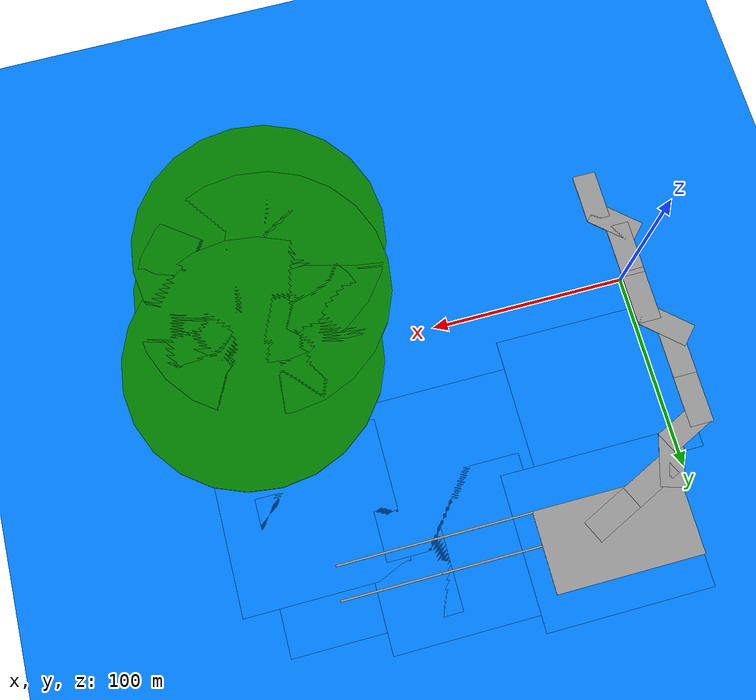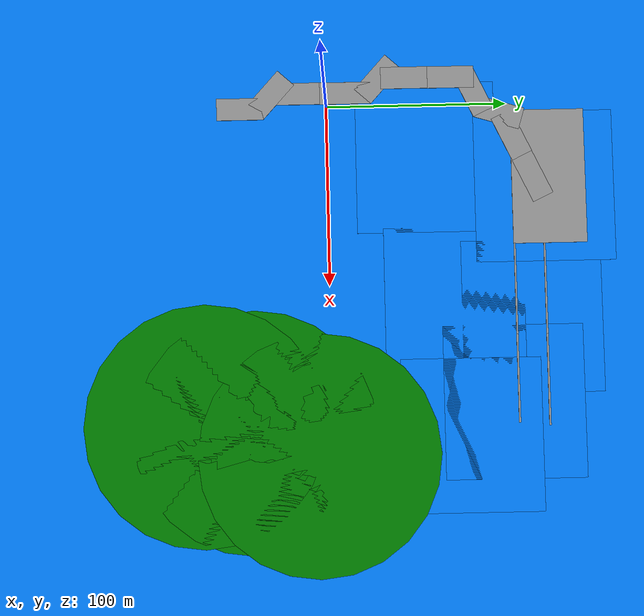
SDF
<sdf version="1.7">
 <world name="default">
  <model name="ground_plane">
   <static>1</static>
   <link name="link">
    <collision name="collision">
     <geometry><plane><normal>0 0 1</normal><size>100 100</size></plane></geometry>
     <surface><friction><ode><mu>100</mu><mu2>50</mu2></ode></friction></surface>
    </collision>
    <visual name="visual">
     <cast_shadows>0</cast_shadows>
     <geometry><plane><normal>0 0 1</normal><size>100 100</size></plane></geometry>
     <material>
      <ambient>0 0.5 1 1</ambient>
      <diffuse>0 0.5 1 1</diffuse>
      <specular>0.1 0.1 0.1 1</specular>
      <emissive>0 0 0 0</emissive>
     </material>
    </visual>
   </link>
  </model>
  <model name="ground">
   <link name="link">
    <inertial>
     <mass>1</mass>
     <inertia>
      <ixx>0.166667</ixx>
      <ixy>0</ixy>
      <ixz>0</ixz>
      <iyy>0.166667</iyy>
      <iyz>0</iyz>
      <izz>0.166667</izz>
     </inertia>
    </inertial>
    <pose>0 2.71082 0 0 -0 0</pose>
    <visual name="visual">
     <geometry><box><size>12.2775 26.0732 0.428308</size></box></geometry>
     <material>
      <lighting>1</lighting>
      <script><uri>file://media/materials/scripts/gazebo.material</uri><name>Gazebo/Grey</name></script>
      <shader type="pixel"/>
     </material>
    </visual>
    <collision name="collision">
     <geometry><box><size>12.2775 26.0732 0.428308</size></box></geometry>
     <surface>
      <friction>
       <ode><mu>1</mu><mu2>1</mu2><fdir1>0 0 0</fdir1><slip1>0</slip1><slip2>0</slip2></ode>
       <torsional>
        <coefficient>1</coefficient>
        <patch_radius>0</patch_radius>
        <surface_radius>0</surface_radius>
        <use_patch_radius>1</use_patch_radius>
        <ode><slip>0</slip></ode>
       </torsional>
      </friction>
      <bounce><restitution_coefficient>0</restitution_coefficient><threshold>1e+06</threshold></bounce>
      <contact>
       <collide_without_contact>0</collide_without_contact>
       <collide_without_contact_bitmask>1</collide_without_contact_bitmask>
       <collide_bitmask>1</collide_bitmask>
       <ode>
        <soft_cfm>0</soft_cfm>
        <soft_erp>0.2</soft_erp>
        <kp>1e+13</kp>
        <kd>1</kd>
        <max_vel>0.01</max_vel>
        <min_depth>0</min_depth>
       </ode>
       <bullet>
        <split_impulse>1</split_impulse>
        <split_impulse_penetration_threshold>-0.01</split_impulse_penetration_threshold>
        <soft_cfm>0</soft_cfm>
        <soft_erp>0.2</soft_erp>
        <kp>1e+13</kp>
        <kd>1</kd>
       </bullet>
      </contact>
     </surface>
    </collision>
   </link>
   <link name="link_clone">
    <inertial>
     <mass>1</mass>
     <inertia>
      <ixx>0.166667</ixx>
      <ixy>0</ixy>
      <ixz>0</ixz>
      <iyy>0.166667</iyy>
      <iyz>0</iyz>
      <izz>0.166667</izz>
     </inertia>
    </inertial>
    <pose>-7.60672 19.8582 0 0 -0 0.838579</pose>
    <visual name="visual">
     <geometry><box><size>12.2775 26.0732 0.428308</size></box></geometry>
     <material>
      <lighting>1</lighting>
      <script><uri>file://media/materials/scripts/gazebo.material</uri><name>Gazebo/Grey</name></script>
      <shader type="pixel"/>
     </material>
    </visual>
    <collision name="collision">
     <geometry><box><size>12.2775 26.0732 0.428308</size></box></geometry>
     <surface>
      <friction>
       <ode><mu>1</mu><mu2>1</mu2><fdir1>0 0 0</fdir1><slip1>0</slip1><slip2>0</slip2></ode>
       <torsional>
        <coefficient>1</coefficient>
        <patch_radius>0</patch_radius>
        <surface_radius>0</surface_radius>
        <use_patch_radius>1</use_patch_radius>
        <ode><slip>0</slip></ode>
       </torsional>
      </friction>
      <bounce><restitution_coefficient>0</restitution_coefficient><threshold>1e+06</threshold></bounce>
      <contact>
       <collide_without_contact>0</collide_without_contact>
       <collide_without_contact_bitmask>1</collide_without_contact_bitmask>
       <collide_bitmask>1</collide_bitmask>
       <ode>
        <soft_cfm>0</soft_cfm>
        <soft_erp>0.2</soft_erp>
        <kp>1e+13</kp>
        <kd>1</kd>
        <max_vel>0.01</max_vel>
        <min_depth>0</min_depth>
       </ode>
       <bullet>
        <split_impulse>1</split_impulse>
        <split_impulse_penetration_threshold>-0.01</split_impulse_penetration_threshold>
        <soft_cfm>0</soft_cfm>
        <soft_erp>0.2</soft_erp>
        <kp>1e+13</kp>
        <kd>1</kd>
       </bullet>
      </contact>
     </surface>
    </collision>
   </link>
   <link name="link_clone_0">
    <inertial>
     <mass>1</mass>
     <inertia>
      <ixx>0.166667</ixx>
      <ixy>0</ixy>
      <ixz>0</ixz>
      <iyy>0.166667</iyy>
      <iyz>0</iyz>
      <izz>0.166667</izz>
     </inertia>
    </inertial>
    <pose>-8.13936 34.3499 0 0 -0 0</pose>
    <visual name="visual">
     <geometry><box><size>12.2775 26.0732 0.428308</size></box></geometry>
     <material>
      <lighting>1</lighting>
      <script><uri>file://media/materials/scripts/gazebo.material</uri><name>Gazebo/Grey</name></script>
      <shader type="pixel"/>
     </material>
    </visual>
    <collision name="collision">
     <geometry><box><size>12.2775 26.0732 0.428308</size></box></geometry>
     <surface>
      <friction>
       <ode><mu>1</mu><mu2>1</mu2><fdir1>0 0 0</fdir1><slip1>0</slip1><slip2>0</slip2></ode>
       <torsional>
        <coefficient>1</coefficient>
        <patch_radius>0</patch_radius>
        <surface_radius>0</surface_radius>
        <use_patch_radius>1</use_patch_radius>
        <ode><slip>0</slip></ode>
       </torsional>
      </friction>
      <bounce><restitution_coefficient>0</restitution_coefficient><threshold>1e+06</threshold></bounce>
      <contact>
       <collide_without_contact>0</collide_without_contact>
       <collide_without_contact_bitmask>1</collide_without_contact_bitmask>
       <collide_bitmask>1</collide_bitmask>
       <ode>
        <soft_cfm>0</soft_cfm>
        <soft_erp>0.2</soft_erp>
        <kp>1e+13</kp>
        <kd>1</kd>
        <max_vel>0.01</max_vel>
        <min_depth>0</min_depth>
       </ode>
       <bullet>
        <split_impulse>1</split_impulse>
        <split_impulse_penetration_threshold>-0.01</split_impulse_penetration_threshold>
        <soft_cfm>0</soft_cfm>
        <soft_erp>0.2</soft_erp>
        <kp>1e+13</kp>
        <kd>1</kd>
       </bullet>
      </contact>
     </surface>
    </collision>
   </link>
   <link name="link_clone_0_clone">
    <inertial>
     <mass>1</mass>
     <inertia>
      <ixx>0.166667</ixx>
      <ixy>0</ixy>
      <ixz>0</ixz>
      <iyy>0.166667</iyy>
      <iyz>0</iyz>
      <izz>0.166667</izz>
     </inertia>
    </inertial>
    <pose>-8.03787 60.3254 0 0 -0 0</pose>
    <visual name="visual">
     <geometry><box><size>12.2775 26.0732 0.428308</size></box></geometry>
     <material>
      <lighting>1</lighting>
      <script><uri>file://media/materials/scripts/gazebo.material</uri><name>Gazebo/Grey</name></script>
      <shader type="pixel"/>
     </material>
    </visual>
    <collision name="collision">
     <geometry><box><size>12.2775 26.0732 0.428308</size></box></geometry>
     <surface>
      <friction>
       <ode><mu>1</mu><mu2>1</mu2><fdir1>0 0 0</fdir1><slip1>0</slip1><slip2>0</slip2></ode>
       <torsional>
        <coefficient>1</coefficient>
        <patch_radius>0</patch_radius>
        <surface_radius>0</surface_radius>
        <use_patch_radius>1</use_patch_radius>
        <ode><slip>0</slip></ode>
       </torsional>
      </friction>
      <bounce><restitution_coefficient>0</restitution_coefficient><threshold>1e+06</threshold></bounce>
      <contact>
       <collide_without_contact>0</collide_without_contact>
       <collide_without_contact_bitmask>1</collide_without_contact_bitmask>
       <collide_bitmask>1</collide_bitmask>
       <ode>
        <soft_cfm>0</soft_cfm>
        <soft_erp>0.2</soft_erp>
        <kp>1e+13</kp>
        <kd>1</kd>
        <max_vel>0.01</max_vel>
        <min_depth>0</min_depth>
       </ode>
       <bullet>
        <split_impulse>1</split_impulse>
        <split_impulse_penetration_threshold>-0.01</split_impulse_penetration_threshold>
        <soft_cfm>0</soft_cfm>
        <soft_erp>0.2</soft_erp>
        <kp>1e+13</kp>
        <kd>1</kd>
       </bullet>
      </contact>
     </surface>
    </collision>
   </link>
   <static>1</static>
   <pose>0.250638 -51.022 0.106728 0 -0 0</pose>
  </model>
  <model name="ground_clone">
   <link name="link">
    <inertial>
     <mass>1</mass>
     <inertia>
      <ixx>0.166667</ixx>
      <ixy>0</ixy>
      <ixz>0</ixz>
      <iyy>0.166667</iyy>
      <iyz>0</iyz>
      <izz>0.166667</izz>
     </inertia>
    </inertial>
    <pose>0 2.71082 0 0 -0 0</pose>
    <visual name="visual">
     <geometry><box><size>12.2775 26.0732 0.428308</size></box></geometry>
     <material>
      <lighting>1</lighting>
      <script><uri>file://media/materials/scripts/gazebo.material</uri><name>Gazebo/Grey</name></script>
      <shader type="pixel"/>
     </material>
    </visual>
    <collision name="collision">
     <geometry><box><size>12.2775 26.0732 0.428308</size></box></geometry>
     <surface>
      <friction>
       <ode><mu>1</mu><mu2>1</mu2><fdir1>0 0 0</fdir1><slip1>0</slip1><slip2>0</slip2></ode>
       <torsional>
        <coefficient>1</coefficient>
        <patch_radius>0</patch_radius>
        <surface_radius>0</surface_radius>
        <use_patch_radius>1</use_patch_radius>
        <ode><slip>0</slip></ode>
       </torsional>
      </friction>
      <bounce><restitution_coefficient>0</restitution_coefficient><threshold>1e+06</threshold></bounce>
      <contact>
       <collide_without_contact>0</collide_without_contact>
       <collide_without_contact_bitmask>1</collide_without_contact_bitmask>
       <collide_bitmask>1</collide_bitmask>
       <ode>
        <soft_cfm>0</soft_cfm>
        <soft_erp>0.2</soft_erp>
        <kp>1e+13</kp>
        <kd>1</kd>
        <max_vel>0.01</max_vel>
        <min_depth>0</min_depth>
       </ode>
       <bullet>
        <split_impulse>1</split_impulse>
        <split_impulse_penetration_threshold>-0.01</split_impulse_penetration_threshold>
        <soft_cfm>0</soft_cfm>
        <soft_erp>0.2</soft_erp>
        <kp>1e+13</kp>
        <kd>1</kd>
       </bullet>
      </contact>
     </surface>
    </collision>
   </link>
   <link name="link_clone">
    <inertial>
     <mass>1</mass>
     <inertia>
      <ixx>0.166667</ixx>
      <ixy>0</ixy>
      <ixz>0</ixz>
      <iyy>0.166667</iyy>
      <iyz>0</iyz>
      <izz>0.166667</izz>
     </inertia>
    </inertial>
    <pose>-7.60672 19.8582 0 0 -0 0.838579</pose>
    <visual name="visual">
     <geometry><box><size>12.2775 26.0732 0.428308</size></box></geometry>
     <material>
      <lighting>1</lighting>
      <script><uri>file://media/materials/scripts/gazebo.material</uri><name>Gazebo/Grey</name></script>
      <shader type="pixel"/>
     </material>
    </visual>
    <collision name="collision">
     <geometry><box><size>12.2775 26.0732 0.428308</size></box></geometry>
     <surface>
      <friction>
       <ode><mu>1</mu><mu2>1</mu2><fdir1>0 0 0</fdir1><slip1>0</slip1><slip2>0</slip2></ode>
       <torsional>
        <coefficient>1</coefficient>
        <patch_radius>0</patch_radius>
        <surface_radius>0</surface_radius>
        <use_patch_radius>1</use_patch_radius>
        <ode><slip>0</slip></ode>
       </torsional>
      </friction>
      <bounce><restitution_coefficient>0</restitution_coefficient><threshold>1e+06</threshold></bounce>
      <contact>
       <collide_without_contact>0</collide_without_contact>
       <collide_without_contact_bitmask>1</collide_without_contact_bitmask>
       <collide_bitmask>1</collide_bitmask>
       <ode>
        <soft_cfm>0</soft_cfm>
        <soft_erp>0.2</soft_erp>
        <kp>1e+13</kp>
        <kd>1</kd>
        <max_vel>0.01</max_vel>
        <min_depth>0</min_depth>
       </ode>
       <bullet>
        <split_impulse>1</split_impulse>
        <split_impulse_penetration_threshold>-0.01</split_impulse_penetration_threshold>
        <soft_cfm>0</soft_cfm>
        <soft_erp>0.2</soft_erp>
        <kp>1e+13</kp>
        <kd>1</kd>
       </bullet>
      </contact>
     </surface>
    </collision>
   </link>
   <link name="link_clone_0">
    <inertial>
     <mass>1</mass>
     <inertia>
      <ixx>0.166667</ixx>
      <ixy>0</ixy>
      <ixz>0</ixz>
      <iyy>0.166667</iyy>
      <iyz>0</iyz>
      <izz>0.166667</izz>
     </inertia>
    </inertial>
    <pose>-8.13936 34.3499 0 0 -0 0</pose>
    <visual name="visual">
     <geometry><box><size>12.2775 26.0732 0.428308</size></box></geometry>
     <material>
      <lighting>1</lighting>
      <script><uri>file://media/materials/scripts/gazebo.material</uri><name>Gazebo/Grey</name></script>
      <shader type="pixel"/>
     </material>
    </visual>
    <collision name="collision">
     <geometry><box><size>12.2775 26.0732 0.428308</size></box></geometry>
     <surface>
      <friction>
       <ode><mu>1</mu><mu2>1</mu2><fdir1>0 0 0</fdir1><slip1>0</slip1><slip2>0</slip2></ode>
       <torsional>
        <coefficient>1</coefficient>
        <patch_radius>0</patch_radius>
        <surface_radius>0</surface_radius>
        <use_patch_radius>1</use_patch_radius>
        <ode><slip>0</slip></ode>
       </torsional>
      </friction>
      <bounce><restitution_coefficient>0</restitution_coefficient><threshold>1e+06</threshold></bounce>
      <contact>
       <collide_without_contact>0</collide_without_contact>
       <collide_without_contact_bitmask>1</collide_without_contact_bitmask>
       <collide_bitmask>1</collide_bitmask>
       <ode>
        <soft_cfm>0</soft_cfm>
        <soft_erp>0.2</soft_erp>
        <kp>1e+13</kp>
        <kd>1</kd>
        <max_vel>0.01</max_vel>
        <min_depth>0</min_depth>
       </ode>
       <bullet>
        <split_impulse>1</split_impulse>
        <split_impulse_penetration_threshold>-0.01</split_impulse_penetration_threshold>
        <soft_cfm>0</soft_cfm>
        <soft_erp>0.2</soft_erp>
        <kp>1e+13</kp>
        <kd>1</kd>
       </bullet>
      </contact>
     </surface>
    </collision>
   </link>
   <link name="link_clone_0_clone">
    <inertial>
     <mass>1</mass>
     <inertia>
      <ixx>0.166667</ixx>
      <ixy>0</ixy>
      <ixz>0</ixz>
      <iyy>0.166667</iyy>
      <iyz>0</iyz>
      <izz>0.166667</izz>
     </inertia>
    </inertial>
    <pose>-8.03787 60.3254 0 0 -0 0</pose>
    <visual name="visual">
     <geometry><box><size>12.2775 26.0732 0.428308</size></box></geometry>
     <material>
      <lighting>1</lighting>
      <script><uri>file://media/materials/scripts/gazebo.material</uri><name>Gazebo/Grey</name></script>
      <shader type="pixel"/>
     </material>
    </visual>
    <collision name="collision">
     <geometry><box><size>12.2775 26.0732 0.428308</size></box></geometry>
     <surface>
      <friction>
       <ode><mu>1</mu><mu2>1</mu2><fdir1>0 0 0</fdir1><slip1>0</slip1><slip2>0</slip2></ode>
       <torsional>
        <coefficient>1</coefficient>
        <patch_radius>0</patch_radius>
        <surface_radius>0</surface_radius>
        <use_patch_radius>1</use_patch_radius>
        <ode><slip>0</slip></ode>
       </torsional>
      </friction>
      <bounce><restitution_coefficient>0</restitution_coefficient><threshold>1e+06</threshold></bounce>
      <contact>
       <collide_without_contact>0</collide_without_contact>
       <collide_without_contact_bitmask>1</collide_without_contact_bitmask>
       <collide_bitmask>1</collide_bitmask>
       <ode>
        <soft_cfm>0</soft_cfm>
        <soft_erp>0.2</soft_erp>
        <kp>1e+13</kp>
        <kd>1</kd>
        <max_vel>0.01</max_vel>
        <min_depth>0</min_depth>
       </ode>
       <bullet>
        <split_impulse>1</split_impulse>
        <split_impulse_penetration_threshold>-0.01</split_impulse_penetration_threshold>
        <soft_cfm>0</soft_cfm>
        <soft_erp>0.2</soft_erp>
        <kp>1e+13</kp>
        <kd>1</kd>
       </bullet>
      </contact>
     </surface>
    </collision>
   </link>
   <static>1</static>
   <pose>-7.76388 9.13868 0.121126 0 -0 0</pose>
  </model>
  <model name="ground_clone_0">
   <link name="link">
    <inertial>
     <mass>1</mass>
     <inertia>
      <ixx>0.166667</ixx>
      <ixy>0</ixy>
      <ixz>0</ixz>
      <iyy>0.166667</iyy>
      <iyz>0</iyz>
      <izz>0.166667</izz>
     </inertia>
    </inertial>
    <pose>0 2.71082 0 0 -0 0</pose>
    <visual name="visual">
     <geometry><box><size>12.2775 26.0732 0.428308</size></box></geometry>
     <material>
      <lighting>1</lighting>
      <script><uri>file://media/materials/scripts/gazebo.material</uri><name>Gazebo/Grey</name></script>
      <shader type="pixel"/>
     </material>
    </visual>
    <collision name="collision">
     <geometry><box><size>12.2775 26.0732 0.428308</size></box></geometry>
     <surface>
      <friction>
       <ode><mu>1</mu><mu2>1</mu2><fdir1>0 0 0</fdir1><slip1>0</slip1><slip2>0</slip2></ode>
       <torsional>
        <coefficient>1</coefficient>
        <patch_radius>0</patch_radius>
        <surface_radius>0</surface_radius>
        <use_patch_radius>1</use_patch_radius>
        <ode><slip>0</slip></ode>
       </torsional>
      </friction>
      <bounce><restitution_coefficient>0</restitution_coefficient><threshold>1e+06</threshold></bounce>
      <contact>
       <collide_without_contact>0</collide_without_contact>
       <collide_without_contact_bitmask>1</collide_without_contact_bitmask>
       <collide_bitmask>1</collide_bitmask>
       <ode>
        <soft_cfm>0</soft_cfm>
        <soft_erp>0.2</soft_erp>
        <kp>1e+13</kp>
        <kd>1</kd>
        <max_vel>0.01</max_vel>
        <min_depth>0</min_depth>
       </ode>
       <bullet>
        <split_impulse>1</split_impulse>
        <split_impulse_penetration_threshold>-0.01</split_impulse_penetration_threshold>
        <soft_cfm>0</soft_cfm>
        <soft_erp>0.2</soft_erp>
        <kp>1e+13</kp>
        <kd>1</kd>
       </bullet>
      </contact>
     </surface>
    </collision>
   </link>
   <link name="link_clone">
    <inertial>
     <mass>1</mass>
     <inertia>
      <ixx>0.166667</ixx>
      <ixy>0</ixy>
      <ixz>0</ixz>
      <iyy>0.166667</iyy>
      <iyz>0</iyz>
      <izz>0.166667</izz>
     </inertia>
    </inertial>
    <pose>-7.60672 19.8582 0 0 -0 0.838579</pose>
    <visual name="visual">
     <geometry><box><size>12.2775 26.0732 0.428308</size></box></geometry>
     <material>
      <lighting>1</lighting>
      <script><uri>file://media/materials/scripts/gazebo.material</uri><name>Gazebo/Grey</name></script>
      <shader type="pixel"/>
     </material>
    </visual>
    <collision name="collision">
     <geometry><box><size>12.2775 26.0732 0.428308</size></box></geometry>
     <surface>
      <friction>
       <ode><mu>1</mu><mu2>1</mu2><fdir1>0 0 0</fdir1><slip1>0</slip1><slip2>0</slip2></ode>
       <torsional>
        <coefficient>1</coefficient>
        <patch_radius>0</patch_radius>
        <surface_radius>0</surface_radius>
        <use_patch_radius>1</use_patch_radius>
        <ode><slip>0</slip></ode>
       </torsional>
      </friction>
      <bounce><restitution_coefficient>0</restitution_coefficient><threshold>1e+06</threshold></bounce>
      <contact>
       <collide_without_contact>0</collide_without_contact>
       <collide_without_contact_bitmask>1</collide_without_contact_bitmask>
       <collide_bitmask>1</collide_bitmask>
       <ode>
        <soft_cfm>0</soft_cfm>
        <soft_erp>0.2</soft_erp>
        <kp>1e+13</kp>
        <kd>1</kd>
        <max_vel>0.01</max_vel>
        <min_depth>0</min_depth>
       </ode>
       <bullet>
        <split_impulse>1</split_impulse>
        <split_impulse_penetration_threshold>-0.01</split_impulse_penetration_threshold>
        <soft_cfm>0</soft_cfm>
        <soft_erp>0.2</soft_erp>
        <kp>1e+13</kp>
        <kd>1</kd>
       </bullet>
      </contact>
     </surface>
    </collision>
   </link>
   <link name="link_clone_0">
    <inertial>
     <mass>1</mass>
     <inertia>
      <ixx>0.166667</ixx>
      <ixy>0</ixy>
      <ixz>0</ixz>
      <iyy>0.166667</iyy>
      <iyz>0</iyz>
      <izz>0.166667</izz>
     </inertia>
    </inertial>
    <pose>-8.13936 34.3499 0 0 -0 0</pose>
    <visual name="visual">
     <geometry><box><size>12.2775 26.0732 0.428308</size></box></geometry>
     <material>
      <lighting>1</lighting>
      <script><uri>file://media/materials/scripts/gazebo.material</uri><name>Gazebo/Grey</name></script>
      <shader type="pixel"/>
     </material>
    </visual>
    <collision name="collision">
     <geometry><box><size>12.2775 26.0732 0.428308</size></box></geometry>
     <surface>
      <friction>
       <ode><mu>1</mu><mu2>1</mu2><fdir1>0 0 0</fdir1><slip1>0</slip1><slip2>0</slip2></ode>
       <torsional>
        <coefficient>1</coefficient>
        <patch_radius>0</patch_radius>
        <surface_radius>0</surface_radius>
        <use_patch_radius>1</use_patch_radius>
        <ode><slip>0</slip></ode>
       </torsional>
      </friction>
      <bounce><restitution_coefficient>0</restitution_coefficient><threshold>1e+06</threshold></bounce>
      <contact>
       <collide_without_contact>0</collide_without_contact>
       <collide_without_contact_bitmask>1</collide_without_contact_bitmask>
       <collide_bitmask>1</collide_bitmask>
       <ode>
        <soft_cfm>0</soft_cfm>
        <soft_erp>0.2</soft_erp>
        <kp>1e+13</kp>
        <kd>1</kd>
        <max_vel>0.01</max_vel>
        <min_depth>0</min_depth>
       </ode>
       <bullet>
        <split_impulse>1</split_impulse>
        <split_impulse_penetration_threshold>-0.01</split_impulse_penetration_threshold>
        <soft_cfm>0</soft_cfm>
        <soft_erp>0.2</soft_erp>
        <kp>1e+13</kp>
        <kd>1</kd>
       </bullet>
      </contact>
     </surface>
    </collision>
   </link>
   <link name="link_clone_0_clone">
    <inertial>
     <mass>1</mass>
     <inertia>
      <ixx>0.166667</ixx>
      <ixy>0</ixy>
      <ixz>0</ixz>
      <iyy>0.166667</iyy>
      <iyz>0</iyz>
      <izz>0.166667</izz>
     </inertia>
    </inertial>
    <pose>-8.03787 60.3254 0 0 -0 0</pose>
    <visual name="visual">
     <geometry><box><size>12.2775 26.0732 0.428308</size></box></geometry>
     <material>
      <lighting>1</lighting>
      <script><uri>file://media/materials/scripts/gazebo.material</uri><name>Gazebo/Grey</name></script>
      <shader type="pixel"/>
     </material>
    </visual>
    <collision name="collision">
     <geometry><box><size>12.2775 26.0732 0.428308</size></box></geometry>
     <surface>
      <friction>
       <ode><mu>1</mu><mu2>1</mu2><fdir1>0 0 0</fdir1><slip1>0</slip1><slip2>0</slip2></ode>
       <torsional>
        <coefficient>1</coefficient>
        <patch_radius>0</patch_radius>
        <surface_radius>0</surface_radius>
        <use_patch_radius>1</use_patch_radius>
        <ode><slip>0</slip></ode>
       </torsional>
      </friction>
      <bounce><restitution_coefficient>0</restitution_coefficient><threshold>1e+06</threshold></bounce>
      <contact>
       <collide_without_contact>0</collide_without_contact>
       <collide_without_contact_bitmask>1</collide_without_contact_bitmask>
       <collide_bitmask>1</collide_bitmask>
       <ode>
        <soft_cfm>0</soft_cfm>
        <soft_erp>0.2</soft_erp>
        <kp>1e+13</kp>
        <kd>1</kd>
        <max_vel>0.01</max_vel>
        <min_depth>0</min_depth>
       </ode>
       <bullet>
        <split_impulse>1</split_impulse>
        <split_impulse_penetration_threshold>-0.01</split_impulse_penetration_threshold>
        <soft_cfm>0</soft_cfm>
        <soft_erp>0.2</soft_erp>
        <kp>1e+13</kp>
        <kd>1</kd>
       </bullet>
      </contact>
     </surface>
    </collision>
   </link>
   <static>1</static>
   <pose>-9.88185 80.6091 0.120152 0 0 -1.12831</pose>
  </model>
  <model name="water_clone_2">
   <link name="link">
    <inertial>
     <mass>1.0585</mass>
     <inertia><ixx>525.225</ixx><ixy>0</ixy><ixz>0</ixz><iyy>622.97</iyy><iyz>0</iyz><izz>1148.19</izz></inertia>
    </inertial>
    <pose>37.5335 0 0 0 -0 0</pose>
    <visual name="visual">
     <geometry><box><size>84.0384 77.1644 0.109494</size></box></geometry>
     <material>
      <ambient>0 0.5 1 1</ambient>
      <diffuse>0 0.5 1 1</diffuse>
      <specular>0.1 0.1 0.1 1</specular>
      <emissive>0 0 0 0</emissive>
     </material>
    </visual>
    <collision name="collision">
     <geometry><box><size>84.0384 77.1644 0.109494</size></box></geometry>
     <surface>
      <friction>
       <ode><mu>1</mu><mu2>1</mu2><fdir1>0 0 0</fdir1><slip1>0</slip1><slip2>0</slip2></ode>
       <torsional>
        <coefficient>1</coefficient>
        <patch_radius>0</patch_radius>
        <surface_radius>0</surface_radius>
        <use_patch_radius>1</use_patch_radius>
        <ode><slip>0</slip></ode>
       </torsional>
      </friction>
      <bounce><restitution_coefficient>0</restitution_coefficient><threshold>1e+06</threshold></bounce>
      <contact>
       <collide_without_contact>0</collide_without_contact>
       <collide_without_contact_bitmask>1</collide_without_contact_bitmask>
       <collide_bitmask>1</collide_bitmask>
       <ode>
        <soft_cfm>0</soft_cfm>
        <soft_erp>0.2</soft_erp>
        <kp>1e+13</kp>
        <kd>1</kd>
        <max_vel>0.01</max_vel>
        <min_depth>0</min_depth>
       </ode>
       <bullet>
        <split_impulse>1</split_impulse>
        <split_impulse_penetration_threshold>-0.01</split_impulse_penetration_threshold>
        <soft_cfm>0</soft_cfm>
        <soft_erp>0.2</soft_erp>
        <kp>1e+13</kp>
        <kd>1</kd>
       </bullet>
      </contact>
     </surface>
    </collision>
   </link>
   <static>1</static>
   <pose>-8.2865 54.4211 0 0 -0 0</pose>
  </model>
  <model name="water_clone_3">
   <link name="link">
    <inertial>
     <mass>1.0585</mass>
     <inertia><ixx>525.225</ixx><ixy>0</ixy><ixz>0</ixz><iyy>622.97</iyy><iyz>0</iyz><izz>1148.19</izz></inertia>
    </inertial>
    <pose>37.5335 0 0 0 -0 0</pose>
    <visual name="visual">
     <geometry><box><size>84.0384 77.1644 0.109494</size></box></geometry>
     <material>
      <ambient>0 0.5 1 1</ambient>
      <diffuse>0 0.5 1 1</diffuse>
      <specular>0.1 0.1 0.1 1</specular>
      <emissive>0 0 0 0</emissive>
     </material>
    </visual>
    <collision name="collision">
     <geometry><box><size>84.0384 77.1644 0.109494</size></box></geometry>
     <surface>
      <friction>
       <ode><mu>1</mu><mu2>1</mu2><fdir1>0 0 0</fdir1><slip1>0</slip1><slip2>0</slip2></ode>
       <torsional>
        <coefficient>1</coefficient>
        <patch_radius>0</patch_radius>
        <surface_radius>0</surface_radius>
        <use_patch_radius>1</use_patch_radius>
        <ode><slip>0</slip></ode>
       </torsional>
      </friction>
      <bounce><restitution_coefficient>0</restitution_coefficient><threshold>1e+06</threshold></bounce>
      <contact>
       <collide_without_contact>0</collide_without_contact>
       <collide_without_contact_bitmask>1</collide_without_contact_bitmask>
       <collide_bitmask>1</collide_bitmask>
       <ode>
        <soft_cfm>0</soft_cfm>
        <soft_erp>0.2</soft_erp>
        <kp>1e+13</kp>
        <kd>1</kd>
        <max_vel>0.01</max_vel>
        <min_depth>0</min_depth>
       </ode>
       <bullet>
        <split_impulse>1</split_impulse>
        <split_impulse_penetration_threshold>-0.01</split_impulse_penetration_threshold>
        <soft_cfm>0</soft_cfm>
        <soft_erp>0.2</soft_erp>
        <kp>1e+13</kp>
        <kd>1</kd>
       </bullet>
      </contact>
     </surface>
    </collision>
   </link>
   <static>1</static>
   <pose>73.3245 68.7467 0 0 -0 0</pose>
  </model>
  <model name="water_clone_4">
   <link name="link">
    <inertial>
     <mass>1.0585</mass>
     <inertia><ixx>525.225</ixx><ixy>0</ixy><ixz>0</ixz><iyy>622.97</iyy><iyz>0</iyz><izz>1148.19</izz></inertia>
    </inertial>
    <pose>37.5335 0 0 0 -0 0</pose>
    <visual name="visual">
     <geometry><box><size>84.0384 77.1644 0.109494</size></box></geometry>
     <material>
      <ambient>0 0.5 1 1</ambient>
      <diffuse>0 0.5 1 1</diffuse>
      <specular>0.1 0.1 0.1 1</specular>
      <emissive>0 0 0 0</emissive>
     </material>
    </visual>
    <collision name="collision">
     <geometry><box><size>84.0384 77.1644 0.109494</size></box></geometry>
     <surface>
      <friction>
       <ode><mu>1</mu><mu2>1</mu2><fdir1>0 0 0</fdir1><slip1>0</slip1><slip2>0</slip2></ode>
       <torsional>
        <coefficient>1</coefficient>
        <patch_radius>0</patch_radius>
        <surface_radius>0</surface_radius>
        <use_patch_radius>1</use_patch_radius>
        <ode><slip>0</slip></ode>
       </torsional>
      </friction>
      <bounce><restitution_coefficient>0</restitution_coefficient><threshold>1e+06</threshold></bounce>
      <contact>
       <collide_without_contact>0</collide_without_contact>
       <collide_without_contact_bitmask>1</collide_without_contact_bitmask>
       <collide_bitmask>1</collide_bitmask>
       <ode>
        <soft_cfm>0</soft_cfm>
        <soft_erp>0.2</soft_erp>
        <kp>1e+13</kp>
        <kd>1</kd>
        <max_vel>0.01</max_vel>
        <min_depth>0</min_depth>
       </ode>
       <bullet>
        <split_impulse>1</split_impulse>
        <split_impulse_penetration_threshold>-0.01</split_impulse_penetration_threshold>
        <soft_cfm>0</soft_cfm>
        <soft_erp>0.2</soft_erp>
        <kp>1e+13</kp>
        <kd>1</kd>
       </bullet>
      </contact>
     </surface>
    </collision>
   </link>
   <static>1</static>
   <pose>8.9089 119.953 0 0 -0 0</pose>
  </model>
  <model name="parking">
   <link name="link">
    <inertial>
     <mass>3056.67</mass>
     <inertia>
      <ixx>425511</ixx>
      <ixy>0</ixy>
      <ixz>0</ixz>
      <iyy>1.42579e+06</iyy>
      <iyz>0</iyz>
      <izz>1.85079e+06</izz>
     </inertia>
    </inertial>
    <pose>-9.06335 27.5883 -0.690334 0 -0 0</pose>
    <visual name="visual">
     <geometry><box><size>74.8093 40.8594 1</size></box></geometry>
     <material>
      <script><name>Gazebo/Grey</name><uri>file://media/materials/scripts/gazebo.material</uri></script>
      <shader type="pixel"/>
     </material>
    </visual>
    <collision name="collision">
     <geometry><box><size>74.8093 40.8594 1</size></box></geometry>
     <surface>
      <friction>
       <ode><mu>1</mu><mu2>1</mu2><fdir1>0 0 0</fdir1><slip1>0</slip1><slip2>0</slip2></ode>
       <torsional>
        <coefficient>1</coefficient>
        <patch_radius>0</patch_radius>
        <surface_radius>0</surface_radius>
        <use_patch_radius>1</use_patch_radius>
        <ode><slip>0</slip></ode>
       </torsional>
      </friction>
      <bounce><restitution_coefficient>0</restitution_coefficient><threshold>1e+06</threshold></bounce>
      <contact>
       <collide_without_contact>0</collide_without_contact>
       <collide_without_contact_bitmask>1</collide_without_contact_bitmask>
       <collide_bitmask>1</collide_bitmask>
       <ode>
        <soft_cfm>0</soft_cfm>
        <soft_erp>0.2</soft_erp>
        <kp>1e+13</kp>
        <kd>1</kd>
        <max_vel>0.01</max_vel>
        <min_depth>0</min_depth>
       </ode>
       <bullet>
        <split_impulse>1</split_impulse>
        <split_impulse_penetration_threshold>-0.01</split_impulse_penetration_threshold>
        <soft_cfm>0</soft_cfm>
        <soft_erp>0.2</soft_erp>
        <kp>1e+13</kp>
        <kd>1</kd>
       </bullet>
      </contact>
     </surface>
    </collision>
   </link>
   <static>1</static>
   <pose>50.1146 94.8727 0.521134 0 -0 0</pose>
  </model>
  <model name="long_pontoon">
   <link name="link">
    <inertial>
     <mass>50.1458</mass>
     <inertia><ixx>8.35763</ixx><ixy>0</ixy><ixz>0</ixz><iyy>10512.2</iyy><iyz>0</iyz><izz>10512.2</izz></inertia>
    </inertial>
    <pose>0 -0.984627 -0.633383 0 -0 0</pose>
    <visual name="visual">
     <geometry><box><size>50.1458 1 1</size></box></geometry>
     <material>
      <script><name>Gazebo/Grey</name><uri>file://media/materials/scripts/gazebo.material</uri></script>
      <shader type="pixel"/>
     </material>
    </visual>
    <collision name="collision">
     <geometry><box><size>50.1458 1 1</size></box></geometry>
     <surface>
      <friction>
       <ode><mu>1</mu><mu2>1</mu2><fdir1>0 0 0</fdir1><slip1>0</slip1><slip2>0</slip2></ode>
       <torsional>
        <coefficient>1</coefficient>
        <patch_radius>0</patch_radius>
        <surface_radius>0</surface_radius>
        <use_patch_radius>1</use_patch_radius>
        <ode><slip>0</slip></ode>
       </torsional>
      </friction>
      <bounce><restitution_coefficient>0</restitution_coefficient><threshold>1e+06</threshold></bounce>
      <contact>
       <collide_without_contact>0</collide_without_contact>
       <collide_without_contact_bitmask>1</collide_without_contact_bitmask>
       <collide_bitmask>1</collide_bitmask>
       <ode>
        <soft_cfm>0</soft_cfm>
        <soft_erp>0.2</soft_erp>
        <kp>1e+13</kp>
        <kd>1</kd>
        <max_vel>0.01</max_vel>
        <min_depth>0</min_depth>
       </ode>
       <bullet>
        <split_impulse>1</split_impulse>
        <split_impulse_penetration_threshold>-0.01</split_impulse_penetration_threshold>
        <soft_cfm>0</soft_cfm>
        <soft_erp>0.2</soft_erp>
        <kp>1e+13</kp>
        <kd>1</kd>
       </bullet>
      </contact>
     </surface>
    </collision>
   </link>
   <static>1</static>
   <pose>103.308 103.58 0.5 0 -0 0</pose>
  </model>
  <model name="island">
   <link name="link">
    <inertial>
     <mass>65806</mass>
     <inertia>
      <ixx>7.29346e+07</ixx>
      <ixy>0</ixy>
      <ixz>0</ixz>
      <iyy>7.29346e+07</iyy>
      <iyz>0</iyz>
      <izz>1.45718e+08</izz>
     </inertia>
    </inertial>
    <pose>53.9656 -20.393 -1.0272 0 -0 0</pose>
    <visual name="visual">
     <geometry><cylinder><radius>66.5486</radius><length>3.71471</length></cylinder></geometry>
     <material>
      <ambient>0 0.5 0 1</ambient>
      <diffuse>0 0.5 0 1</diffuse>
      <specular>0.1 0.1 0.1 1</specular>
      <emissive>0 0 0 0</emissive>
     </material>
    </visual>
    <collision name="collision">
     <geometry><cylinder><radius>66.5486</radius><length>3.71471</length></cylinder></geometry>
     <surface>
      <friction>
       <ode><mu>1</mu><mu2>1</mu2><fdir1>0 0 0</fdir1><slip1>0</slip1><slip2>0</slip2></ode>
       <torsional>
        <coefficient>1</coefficient>
        <patch_radius>0</patch_radius>
        <surface_radius>0</surface_radius>
        <use_patch_radius>1</use_patch_radius>
        <ode><slip>0</slip></ode>
       </torsional>
      </friction>
      <bounce><restitution_coefficient>0</restitution_coefficient><threshold>1e+06</threshold></bounce>
      <contact>
       <collide_without_contact>0</collide_without_contact>
       <collide_without_contact_bitmask>1</collide_without_contact_bitmask>
       <collide_bitmask>1</collide_bitmask>
       <ode>
        <soft_cfm>0</soft_cfm>
        <soft_erp>0.2</soft_erp>
        <kp>1e+13</kp>
        <kd>1</kd>
        <max_vel>0.01</max_vel>
        <min_depth>0</min_depth>
       </ode>
       <bullet>
        <split_impulse>1</split_impulse>
        <split_impulse_penetration_threshold>-0.01</split_impulse_penetration_threshold>
        <soft_cfm>0</soft_cfm>
        <soft_erp>0.2</soft_erp>
        <kp>1e+13</kp>
        <kd>1</kd>
       </bullet>
      </contact>
     </surface>
    </collision>
   </link>
   <link name="link_clone">
    <inertial>
     <mass>65806</mass>
     <inertia>
      <ixx>7.29346e+07</ixx>
      <ixy>0</ixy>
      <ixz>0</ixz>
      <iyy>7.29346e+07</iyy>
      <iyz>0</iyz>
      <izz>1.45718e+08</izz>
     </inertia>
    </inertial>
    <pose>40.8834 -55.3347 -1.0272 0 -0 0</pose>
    <visual name="visual">
     <geometry><cylinder><radius>66.5486</radius><length>3.71471</length></cylinder></geometry>
     <material>
      <ambient>0 0.5 0 1</ambient>
      <diffuse>0 0.5 0 1</diffuse>
      <specular>0.1 0.1 0.1 1</specular>
      <emissive>0 0 0 0</emissive>
     </material>
    </visual>
    <collision name="collision">
     <geometry><cylinder><radius>66.5486</radius><length>3.71471</length></cylinder></geometry>
     <surface>
      <friction>
       <ode><mu>1</mu><mu2>1</mu2><fdir1>0 0 0</fdir1><slip1>0</slip1><slip2>0</slip2></ode>
       <torsional>
        <coefficient>1</coefficient>
        <patch_radius>0</patch_radius>
        <surface_radius>0</surface_radius>
        <use_patch_radius>1</use_patch_radius>
        <ode><slip>0</slip></ode>
       </torsional>
      </friction>
      <bounce><restitution_coefficient>0</restitution_coefficient><threshold>1e+06</threshold></bounce>
      <contact>
       <collide_without_contact>0</collide_without_contact>
       <collide_without_contact_bitmask>1</collide_without_contact_bitmask>
       <collide_bitmask>1</collide_bitmask>
       <ode>
        <soft_cfm>0</soft_cfm>
        <soft_erp>0.2</soft_erp>
        <kp>1e+13</kp>
        <kd>1</kd>
        <max_vel>0.01</max_vel>
        <min_depth>0</min_depth>
       </ode>
       <bullet>
        <split_impulse>1</split_impulse>
        <split_impulse_penetration_threshold>-0.01</split_impulse_penetration_threshold>
        <soft_cfm>0</soft_cfm>
        <soft_erp>0.2</soft_erp>
        <kp>1e+13</kp>
        <kd>1</kd>
       </bullet>
      </contact>
     </surface>
    </collision>
   </link>
   <link name="link_clone_0">
    <inertial>
     <mass>65806</mass>
     <inertia>
      <ixx>7.29346e+07</ixx>
      <ixy>0</ixy>
      <ixz>0</ixz>
      <iyy>7.29346e+07</iyy>
      <iyz>0</iyz>
      <izz>1.45718e+08</izz>
     </inertia>
    </inertial>
    <pose>36.9586 -82.4261 -1.0272 0 -0 0</pose>
    <visual name="visual">
     <geometry><cylinder><radius>66.5486</radius><length>3.71471</length></cylinder></geometry>
     <material>
      <ambient>0 0.5 0 1</ambient>
      <diffuse>0 0.5 0 1</diffuse>
      <specular>0.1 0.1 0.1 1</specular>
      <emissive>0 0 0 0</emissive>
     </material>
    </visual>
    <collision name="collision">
     <geometry><cylinder><radius>66.5486</radius><length>3.71471</length></cylinder></geometry>
     <surface>
      <friction>
       <ode><mu>1</mu><mu2>1</mu2><fdir1>0 0 0</fdir1><slip1>0</slip1><slip2>0</slip2></ode>
       <torsional>
        <coefficient>1</coefficient>
        <patch_radius>0</patch_radius>
        <surface_radius>0</surface_radius>
        <use_patch_radius>1</use_patch_radius>
        <ode><slip>0</slip></ode>
       </torsional>
      </friction>
      <bounce><restitution_coefficient>0</restitution_coefficient><threshold>1e+06</threshold></bounce>
      <contact>
       <collide_without_contact>0</collide_without_contact>
       <collide_without_contact_bitmask>1</collide_without_contact_bitmask>
       <collide_bitmask>1</collide_bitmask>
       <ode>
        <soft_cfm>0</soft_cfm>
        <soft_erp>0.2</soft_erp>
        <kp>1e+13</kp>
        <kd>1</kd>
        <max_vel>0.01</max_vel>
        <min_depth>0</min_depth>
       </ode>
       <bullet>
        <split_impulse>1</split_impulse>
        <split_impulse_penetration_threshold>-0.01</split_impulse_penetration_threshold>
        <soft_cfm>0</soft_cfm>
        <soft_erp>0.2</soft_erp>
        <kp>1e+13</kp>
        <kd>1</kd>
       </bullet>
      </contact>
     </surface>
    </collision>
   </link>
   <static>1</static>
   <pose>138.669 13.3687 0.5 0 -0 0</pose>
  </model>
  <model name="water_clone_3_clone">
   <link name="link">
    <inertial>
     <mass>1.0585</mass>
     <inertia><ixx>525.225</ixx><ixy>0</ixy><ixz>0</ixz><iyy>622.97</iyy><iyz>0</iyz><izz>1148.19</izz></inertia>
    </inertial>
    <pose>37.5335 0 0 0 -0 0</pose>
    <visual name="visual">
     <geometry><box><size>84.0384 77.1644 0.109494</size></box></geometry>
     <material>
      <ambient>0 0.5 1 1</ambient>
      <diffuse>0 0.5 1 1</diffuse>
      <specular>0.1 0.1 0.1 1</specular>
      <emissive>0 0 0 0</emissive>
     </material>
    </visual>
    <collision name="collision">
     <geometry><box><size>84.0384 77.1644 0.109494</size></box></geometry>
     <surface>
      <friction>
       <ode><mu>1</mu><mu2>1</mu2><fdir1>0 0 0</fdir1><slip1>0</slip1><slip2>0</slip2></ode>
       <torsional>
        <coefficient>1</coefficient>
        <patch_radius>0</patch_radius>
        <surface_radius>0</surface_radius>
        <use_patch_radius>1</use_patch_radius>
        <ode><slip>0</slip></ode>
       </torsional>
      </friction>
      <bounce><restitution_coefficient>0</restitution_coefficient><threshold>1e+06</threshold></bounce>
      <contact>
       <collide_without_contact>0</collide_without_contact>
       <collide_without_contact_bitmask>1</collide_without_contact_bitmask>
       <collide_bitmask>1</collide_bitmask>
       <ode>
        <soft_cfm>0</soft_cfm>
        <soft_erp>0.2</soft_erp>
        <kp>1e+13</kp>
        <kd>1</kd>
        <max_vel>0.01</max_vel>
        <min_depth>0</min_depth>
       </ode>
       <bullet>
        <split_impulse>1</split_impulse>
        <split_impulse_penetration_threshold>-0.01</split_impulse_penetration_threshold>
        <soft_cfm>0</soft_cfm>
        <soft_erp>0.2</soft_erp>
        <kp>1e+13</kp>
        <kd>1</kd>
       </bullet>
      </contact>
     </surface>
    </collision>
   </link>
   <static>1</static>
   <pose>145.738 76.4656 0 0 -0 0</pose>
  </model>
  <model name="water_clone_3_clone_0">
   <link name="link">
    <inertial>
     <mass>1.0585</mass>
     <inertia><ixx>525.225</ixx><ixy>0</ixy><ixz>0</ixz><iyy>622.97</iyy><iyz>0</iyz><izz>1148.19</izz></inertia>
    </inertial>
    <pose>37.5335 0 0 0 -0 0</pose>
    <visual name="visual">
     <geometry><box><size>84.0384 77.1644 0.109494</size></box></geometry>
     <material>
      <ambient>0 0.5 1 1</ambient>
      <diffuse>0 0.5 1 1</diffuse>
      <specular>0.1 0.1 0.1 1</specular>
      <emissive>0 0 0 0</emissive>
     </material>
    </visual>
    <collision name="collision">
     <geometry><box><size>84.0384 77.1644 0.109494</size></box></geometry>
     <surface>
      <friction>
       <ode><mu>1</mu><mu2>1</mu2><fdir1>0 0 0</fdir1><slip1>0</slip1><slip2>0</slip2></ode>
       <torsional>
        <coefficient>1</coefficient>
        <patch_radius>0</patch_radius>
        <surface_radius>0</surface_radius>
        <use_patch_radius>1</use_patch_radius>
        <ode><slip>0</slip></ode>
       </torsional>
      </friction>
      <bounce><restitution_coefficient>0</restitution_coefficient><threshold>1e+06</threshold></bounce>
      <contact>
       <collide_without_contact>0</collide_without_contact>
       <collide_without_contact_bitmask>1</collide_without_contact_bitmask>
       <collide_bitmask>1</collide_bitmask>
       <ode>
        <soft_cfm>0</soft_cfm>
        <soft_erp>0.2</soft_erp>
        <kp>1e+13</kp>
        <kd>1</kd>
        <max_vel>0.01</max_vel>
        <min_depth>0</min_depth>
       </ode>
       <bullet>
        <split_impulse>1</split_impulse>
        <split_impulse_penetration_threshold>-0.01</split_impulse_penetration_threshold>
        <soft_cfm>0</soft_cfm>
        <soft_erp>0.2</soft_erp>
        <kp>1e+13</kp>
        <kd>1</kd>
       </bullet>
      </contact>
     </surface>
    </collision>
   </link>
   <static>1</static>
   <pose>127.893 100.111 0 0 -0 0</pose>
  </model>
  <model name="water_clone_3_clone_1">
   <link name="link">
    <inertial>
     <mass>1.0585</mass>
     <inertia><ixx>525.225</ixx><ixy>0</ixy><ixz>0</ixz><iyy>622.97</iyy><iyz>0</iyz><izz>1148.19</izz></inertia>
    </inertial>
    <pose>37.5335 0 0 0 -0 0</pose>
    <visual name="visual">
     <geometry><box><size>84.0384 77.1644 0.109494</size></box></geometry>
     <material>
      <ambient>0 0.5 1 1</ambient>
      <diffuse>0 0.5 1 1</diffuse>
      <specular>0.1 0.1 0.1 1</specular>
      <emissive>0 0 0 0</emissive>
     </material>
    </visual>
    <collision name="collision">
     <geometry><box><size>84.0384 77.1644 0.109494</size></box></geometry>
     <surface>
      <friction>
       <ode><mu>1</mu><mu2>1</mu2><fdir1>0 0 0</fdir1><slip1>0</slip1><slip2>0</slip2></ode>
       <torsional>
        <coefficient>1</coefficient>
        <patch_radius>0</patch_radius>
        <surface_radius>0</surface_radius>
        <use_patch_radius>1</use_patch_radius>
        <ode><slip>0</slip></ode>
       </torsional>
      </friction>
      <bounce><restitution_coefficient>0</restitution_coefficient><threshold>1e+06</threshold></bounce>
      <contact>
       <collide_without_contact>0</collide_without_contact>
       <collide_without_contact_bitmask>1</collide_without_contact_bitmask>
       <collide_bitmask>1</collide_bitmask>
       <ode>
        <soft_cfm>0</soft_cfm>
        <soft_erp>0.2</soft_erp>
        <kp>1e+13</kp>
        <kd>1</kd>
        <max_vel>0.01</max_vel>
        <min_depth>0</min_depth>
       </ode>
       <bullet>
        <split_impulse>1</split_impulse>
        <split_impulse_penetration_threshold>-0.01</split_impulse_penetration_threshold>
        <soft_cfm>0</soft_cfm>
        <soft_erp>0.2</soft_erp>
        <kp>1e+13</kp>
        <kd>1</kd>
       </bullet>
      </contact>
     </surface>
    </collision>
   </link>
   <static>1</static>
   <pose>81.2841 111.286 0 0 -0 0</pose>
  </model>
  <model name="long_pontoon_clone">
   <link name="link">
    <inertial>
     <mass>50.1458</mass>
     <inertia><ixx>8.35763</ixx><ixy>0</ixy><ixz>0</ixz><iyy>10512.2</iyy><iyz>0</iyz><izz>10512.2</izz></inertia>
    </inertial>
    <pose>0 -0.984627 -0.633383 0 -0 0</pose>
    <visual name="visual">
     <geometry><box><size>50.1458 1 1</size></box></geometry>
     <material>
      <script><name>Gazebo/Grey</name><uri>file://media/materials/scripts/gazebo.material</uri></script>
      <shader type="pixel"/>
     </material>
    </visual>
    <collision name="collision">
     <geometry><box><size>50.1458 1 1</size></box></geometry>
     <surface>
      <friction>
       <ode><mu>1</mu><mu2>1</mu2><fdir1>0 0 0</fdir1><slip1>0</slip1><slip2>0</slip2></ode>
       <torsional>
        <coefficient>1</coefficient>
        <patch_radius>0</patch_radius>
        <surface_radius>0</surface_radius>
        <use_patch_radius>1</use_patch_radius>
        <ode><slip>0</slip></ode>
       </torsional>
      </friction>
      <bounce><restitution_coefficient>0</restitution_coefficient><threshold>1e+06</threshold></bounce>
      <contact>
       <collide_without_contact>0</collide_without_contact>
       <collide_without_contact_bitmask>1</collide_without_contact_bitmask>
       <collide_bitmask>1</collide_bitmask>
       <ode>
        <soft_cfm>0</soft_cfm>
        <soft_erp>0.2</soft_erp>
        <kp>1e+13</kp>
        <kd>1</kd>
        <max_vel>0.01</max_vel>
        <min_depth>0</min_depth>
       </ode>
       <bullet>
        <split_impulse>1</split_impulse>
        <split_impulse_penetration_threshold>-0.01</split_impulse_penetration_threshold>
        <soft_cfm>0</soft_cfm>
        <soft_erp>0.2</soft_erp>
        <kp>1e+13</kp>
        <kd>1</kd>
       </bullet>
      </contact>
     </surface>
    </collision>
   </link>
   <static>1</static>
   <pose>151.857 103.528 0.5 0 -0 0</pose>
  </model>
  <model name="long_pontoon_clone_clone">
   <link name="link">
    <inertial>
     <mass>50.1458</mass>
     <inertia><ixx>8.35763</ixx><ixy>0</ixy><ixz>0</ixz><iyy>10512.2</iyy><iyz>0</iyz><izz>10512.2</izz></inertia>
    </inertial>
    <pose>0 -0.984627 -0.633383 0 -0 0</pose>
    <visual name="visual">
     <geometry><box><size>50.1458 1 1</size></box></geometry>
     <material>
      <script><name>Gazebo/Grey</name><uri>file://media/materials/scripts/gazebo.material</uri></script>
      <shader type="pixel"/>
     </material>
    </visual>
    <collision name="collision">
     <geometry><box><size>50.1458 1 1</size></box></geometry>
     <surface>
      <friction>
       <ode><mu>1</mu><mu2>1</mu2><fdir1>0 0 0</fdir1><slip1>0</slip1><slip2>0</slip2></ode>
       <torsional>
        <coefficient>1</coefficient>
        <patch_radius>0</patch_radius>
        <surface_radius>0</surface_radius>
        <use_patch_radius>1</use_patch_radius>
        <ode><slip>0</slip></ode>
       </torsional>
      </friction>
      <bounce><restitution_coefficient>0</restitution_coefficient><threshold>1e+06</threshold></bounce>
      <contact>
       <collide_without_contact>0</collide_without_contact>
       <collide_without_contact_bitmask>1</collide_without_contact_bitmask>
       <collide_bitmask>1</collide_bitmask>
       <ode>
        <soft_cfm>0</soft_cfm>
        <soft_erp>0.2</soft_erp>
        <kp>1e+13</kp>
        <kd>1</kd>
        <max_vel>0.01</max_vel>
        <min_depth>0</min_depth>
       </ode>
       <bullet>
        <split_impulse>1</split_impulse>
        <split_impulse_penetration_threshold>-0.01</split_impulse_penetration_threshold>
        <soft_cfm>0</soft_cfm>
        <soft_erp>0.2</soft_erp>
        <kp>1e+13</kp>
        <kd>1</kd>
       </bullet>
      </contact>
     </surface>
    </collision>
   </link>
   <static>1</static>
   <pose>103.617 120.09 0.5 0 -0 0</pose>
  </model>
  <model name="long_pontoon_clone_clone_0">
   <link name="link">
    <inertial>
     <mass>50.1458</mass>
     <inertia><ixx>8.35763</ixx><ixy>0</ixy><ixz>0</ixz><iyy>10512.2</iyy><iyz>0</iyz><izz>10512.2</izz></inertia>
    </inertial>
    <pose>0 -0.984627 -0.633383 0 -0 0</pose>
    <visual name="visual">
     <geometry><box><size>50.1458 1 1</size></box></geometry>
     <material>
      <script><name>Gazebo/Grey</name><uri>file://media/materials/scripts/gazebo.material</uri></script>
      <shader type="pixel"/>
     </material>
    </visual>
    <collision name="collision">
     <geometry><box><size>50.1458 1 1</size></box></geometry>
     <surface>
      <friction>
       <ode><mu>1</mu><mu2>1</mu2><fdir1>0 0 0</fdir1><slip1>0</slip1><slip2>0</slip2></ode>
       <torsional>
        <coefficient>1</coefficient>
        <patch_radius>0</patch_radius>
        <surface_radius>0</surface_radius>
        <use_patch_radius>1</use_patch_radius>
        <ode><slip>0</slip></ode>
       </torsional>
      </friction>
      <bounce><restitution_coefficient>0</restitution_coefficient><threshold>1e+06</threshold></bounce>
      <contact>
       <collide_without_contact>0</collide_without_contact>
       <collide_without_contact_bitmask>1</collide_without_contact_bitmask>
       <collide_bitmask>1</collide_bitmask>
       <ode>
        <soft_cfm>0</soft_cfm>
        <soft_erp>0.2</soft_erp>
        <kp>1e+13</kp>
        <kd>1</kd>
        <max_vel>0.01</max_vel>
        <min_depth>0</min_depth>
       </ode>
       <bullet>
        <split_impulse>1</split_impulse>
        <split_impulse_penetration_threshold>-0.01</split_impulse_penetration_threshold>
        <soft_cfm>0</soft_cfm>
        <soft_erp>0.2</soft_erp>
        <kp>1e+13</kp>
        <kd>1</kd>
       </bullet>
      </contact>
     </surface>
    </collision>
   </link>
   <static>1</static>
   <pose>153.609 120.054 0.5 0 -0 0</pose>
  </model>
 </world>
</sdf>
